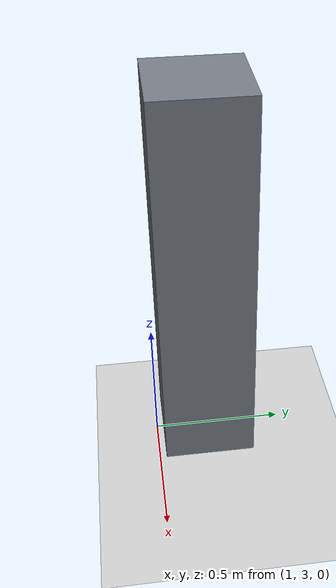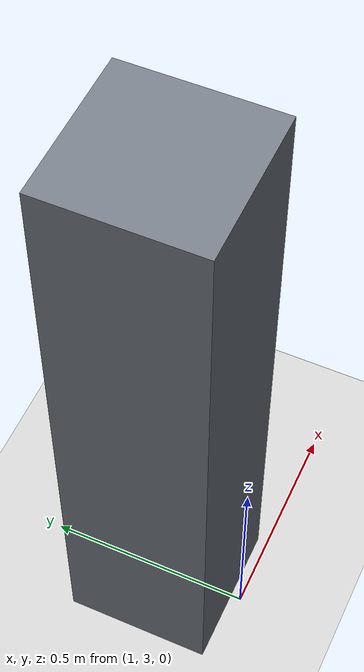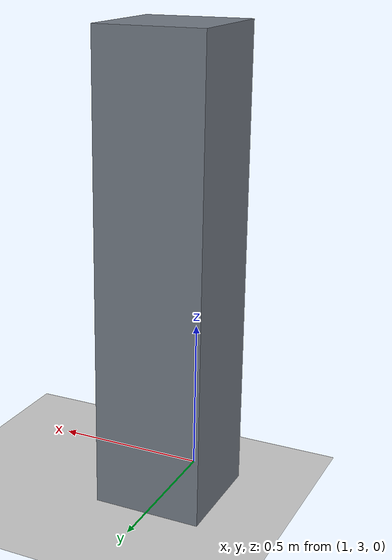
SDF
<?xml version="1.0" ?>
<sdf version="1.6">
  <world name="default">
    <physics type="ode">
      <max_step_size>0.01</max_step_size>
      <real_time_factor>1</real_time_factor>
      <real_time_update_rate>100</real_time_update_rate>
    </physics>
    <gui>
      <camera name="user_camera"><pose>4 -11 8 0 0.55 1.5707</pose></camera>
    </gui>
    <light name="sun" type="directional">
      <pose>0 0 10 0 0 0</pose>
      <diffuse>0.8 0.8 0.8 1</diffuse>
      <specular>0.2 0.2 0.2 1</specular>
      <direction>-0.3 0.2 -1</direction>
    </light>
    <include><uri>model://ground_plane</uri></include>
    <model name="far_landmark">
      <static>true</static><pose>1.0 3.2 0.75 0 0 0</pose>
      <link name="post">
        <collision name="collision"><geometry><box><size>0.35 0.35 1.5</size></box></geometry></collision>
        <visual name="visual"><geometry><box><size>0.35 0.35 1.5</size></box></geometry><material><ambient>0.45 0.48 0.52 1</ambient><diffuse>0.45 0.48 0.52 1</diffuse></material></visual>
      </link>
    </model>
  </world>
</sdf>
